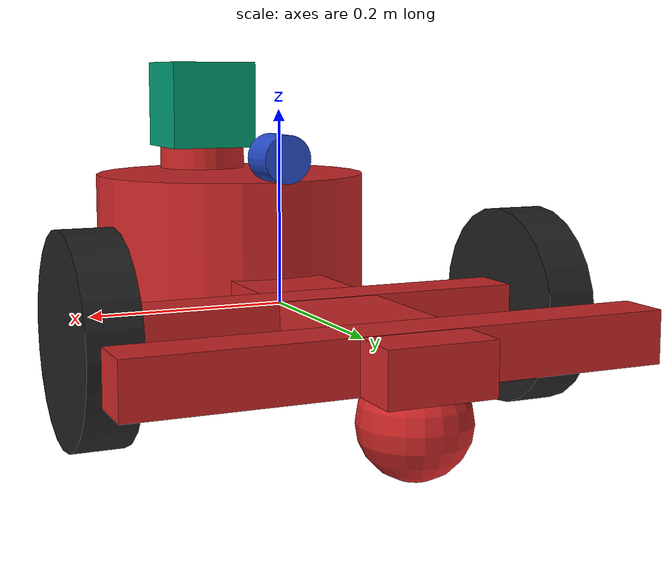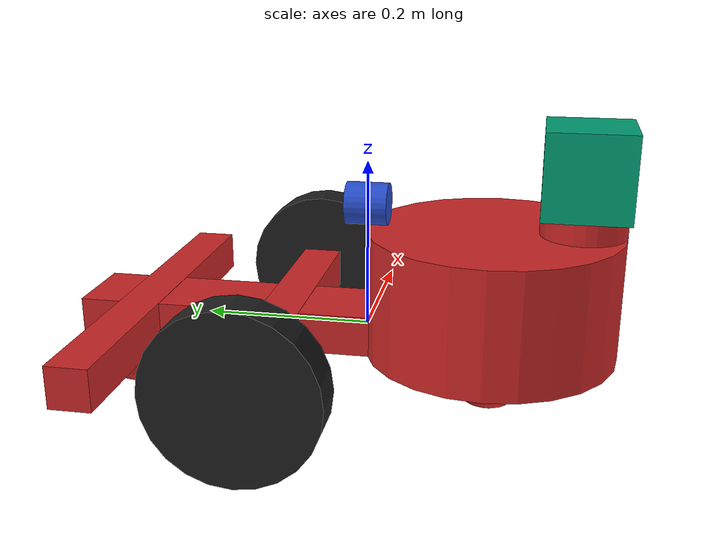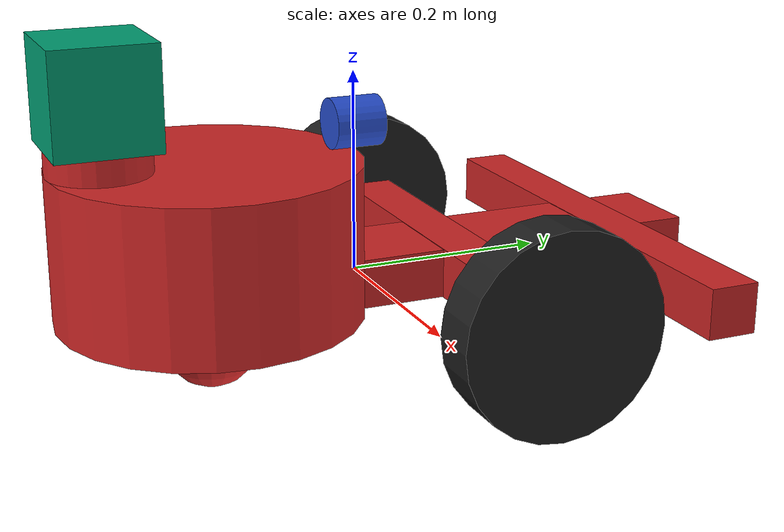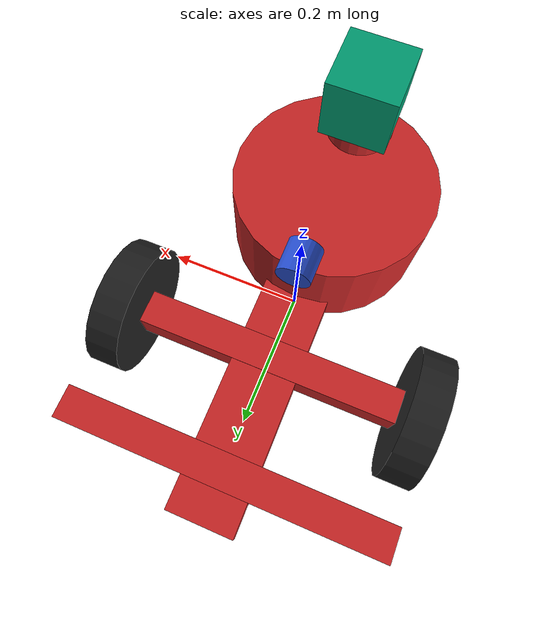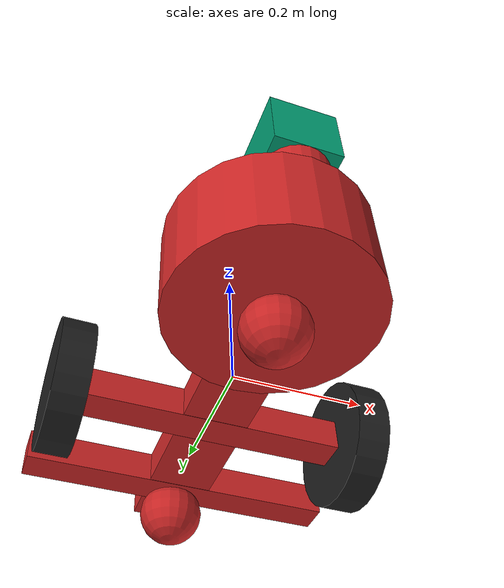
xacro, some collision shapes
<?xml version='1.0'?>

<robot name="my_robot" xmlns:xacro="http://www.ros.org/wiki/xacro">
    <xacro:include filename="$(find my_robot)/urdf/my_robot.gazebo" />

    <link name="robot_footprint"></link>

    <link name="crossbar_main">
        <inertial>
            <mass value="0.5"/>
            <origin xyz="0.0 0 0" rpy=" 0 0 0"/>
            <inertia
                ixx="1e-2" ixy="0" ixz="0"
                iyy="1e-2" iyz="0"
                izz="1e-2"
            />
        </inertial>

        <collision name='crossbar_main_collision'>
            <origin xyz="0 0 0" rpy=" 0 0 0"/>
            <geometry>
                <box size="0.1 0.5 0.05"/>
            </geometry>
        </collision>

        <visual name='crossbar_main_visual'>
            <origin xyz="0 0 0" rpy=" 0 0 0"/>
            <geometry>
                <box size="0.1 0.5 0.049"/>
            </geometry>
        </visual>

        <collision name='caster_collision'>
            <origin xyz="0 -0.25 -0.05" rpy=" 0 0 0"/>
            <geometry>
                <sphere radius="0.049"/>
            </geometry>
        </collision>

        <visual name='caster_visual'>
            <origin xyz="0 -0.25 -0.05" rpy=" 0 0 0"/>
            <geometry>
                <sphere radius="0.049"/>
            </geometry>
        </visual>

        <collision name='caster_collision_fw'>
            <origin xyz="0 0.24 -0.05" rpy=" 0 0 0"/>
            <geometry>
                <sphere radius="0.049"/>
            </geometry>
        </collision>

        <visual name='caster_visual_fw'>
            <origin xyz="0 0.20 -0.05" rpy=" 0 0 0"/>
            <geometry>
                <sphere radius="0.05"/>
            </geometry>
        </visual>

    </link>

    <joint name="ctc_joint" type="fixed">
        <origin xyz="0 0.1 0" rpy="0 0 0"/>
        <parent link="robot_footprint"/>
        <child link="crossbar_trans_center"/>
    </joint>

    <joint name="cm_joint" type="fixed">
        <origin xyz="0 0 0" rpy="0 0 0"/>
        <parent link="crossbar_trans_center"/>
        <child link="crossbar_main"/>
    </joint>

    <link name="crossbar_trans_forward">
        <inertial>
            <mass value="0.5"/>
            <origin xyz="0.0 0 0" rpy=" 0 0 0"/>
            <inertia
                ixx="1e-2" ixy="0" ixz="0"
                iyy="1e-2" iyz="0"
                izz="1e-2"
            />
        </inertial>

        <collision name='crossbar_trans_forward_collision'>
            <origin xyz="0 0 0" rpy=" 0 0 0"/>
            <geometry>
                <box size="0.5 0.05 0.05"/>
            </geometry>
        </collision>

        <visual name='crossbar_trans_forward_visual'>
            <origin xyz="0 0 0" rpy=" 0 0 0"/>
            <geometry>
                <box size="0.5 0.05 0.05"/>
            </geometry>
        </visual>
    </link>

    <joint name="ctf_joint" type="fixed">
        <origin xyz="0 0.275 0" rpy="0 0 0"/>
        <parent link="robot_footprint"/>
        <child link="crossbar_trans_forward"/>
    </joint>

    <link name="crossbar_trans_center">
        <inertial>
            <mass value="5"/>
            <origin xyz="0.0 0 0" rpy=" 0 0 0"/>
            <inertia
                ixx="1e-2" ixy="0" ixz="0"
                iyy="1e-2" iyz="0"
                izz="1e-2"
            />
        </inertial>
        <collision name='crossbar_trans_center_collision'>
            <origin xyz="0 0 0" rpy=" 0 0 0"/>
            <geometry>
                <box size="0.4 0.05 0.05"/>
            </geometry>
        </collision>

        <visual name='crossbar_trans_center_visual'>
            <origin xyz="0 0 0" rpy=" 0 0 0"/>
            <geometry>
                <box size="0.4 0.05 0.05"/>
            </geometry>
        </visual>
    </link>

    <link name="tail">
        <inertial>
            <mass value="0.25"/>
            <origin xyz="0.0 0 0" rpy=" 0 0 0"/>
            <inertia
                ixx="0.01" ixy="0" ixz="0"
                iyy="0.01" iyz="0"
                izz="0.01"
            />
        </inertial>
        <collision name='tail_collision'>
            <origin xyz="0 0 0" rpy=" 0 0 0"/>
            <geometry>
                <cylinder radius="0.15" length="0.15"/>
            </geometry>
        </collision>

        <visual name='tail_visual'>
            <origin xyz="0 0 0" rpy=" 0 0 0"/>
            <geometry>
                <cylinder radius="0.15" length="0.15"/>
            </geometry>
        </visual>
    </link>

    <joint name="tail_joint" type="fixed">
        <origin xyz="0 -0.25 0.05" rpy="0 0 0"/>
        <parent link="crossbar_main"/>
        <child link="tail"/>
    </joint>

    <link name="small_tail">
        <inertial>
            <mass value="0.001"/>
            <origin xyz="0.0 0 0" rpy=" 0 0 0"/>
            <inertia
                ixx="0.01" ixy="0" ixz="0"
                iyy="0.01" iyz="0"
                izz="0.01"
            />
        </inertial>
        <collision name='small_tail_collision'>
            <origin xyz="0 0 0" rpy=" 0 0 0"/>
            <geometry>
                <cylinder radius="0.05" length="0.05"/>
            </geometry>
        </collision>

        <visual name='small_tail_visual'>
            <origin xyz="0 0 0" rpy=" 0 0 0"/>
            <geometry>
                <cylinder radius="0.05" length="0.05"/>
            </geometry>
        </visual>
    </link>

    <joint type="fixed" name="small_tail_joint">
        <origin xyz="0 -0.1 0.1" rpy="0 0 1.5707"/>
        <axis xyz="0 1 0"/>
        <parent link="tail"/>
        <child link="small_tail"/>
    </joint>

    <link name="left_wheel">
        <collision>
            <geometry>
                <cylinder radius="0.1" length="0.05"/>
            </geometry>
            <origin xyz="0 0 0" rpy="0 1.5707 0"/>
        </collision>

        <inertial>
            <origin xyz="0 0 0" rpy="0 1.5707 0"/>
            <mass value="0.5"/>
            <inertia ixx="0.1" ixy="0" ixz="0"  iyy="0.1" iyz="0" izz="0.1"/>
        </inertial>

        <visual>
            <geometry>
                <cylinder radius="0.1" length="0.05"/>
            </geometry>
            <origin xyz="0 0 0" rpy="0 1.5707 0"/>
        </visual>
    </link>

    <joint type="continuous" name="left_wheel_hinge">
        <origin xyz="-0.225 0 0" rpy="0 0 0"/>
        <child link="left_wheel"/>
        <parent link="crossbar_trans_center"/>
        <axis xyz="-1 0 0" rpy="0 0 0"/>
        <limit effort="10000" velocity="1000"/>
        <dynamics damping="1.0" friction="1.0"/>
    </joint>

    <link name="right_wheel">
        <collision>
            <geometry>
                <cylinder radius="0.1" length="0.05"/>
            </geometry>
            <origin xyz="0 0 0" rpy="0 1.5707 0"/>
        </collision>

        <inertial>
            <origin xyz="0 0 0" rpy="0 1.5707 0"/>
            <mass value="0.5"/>
            <inertia ixx="0.1" ixy="0" ixz="0"  iyy="0.1" iyz="0" izz="0.1"/>
        </inertial>

        <visual>
            <geometry>
                <cylinder radius="0.1" length="0.05"/>
            </geometry>
            <origin xyz="0 0 0" rpy="0 1.5707 0"/>
        </visual>
    </link>

    <joint type="continuous" name="right_wheel_hinge">
        <origin xyz="0.225 0 0" rpy="0 0 0"/>
        <child link="right_wheel"/>
        <parent link="crossbar_trans_center"/>
        <axis xyz="-1 0 0" rpy="0 0 0"/>
        <limit effort="10000" velocity="1000"/>
        <dynamics damping="1.0" friction="1.0"/>
    </joint>

    <link name="camera">
        <inertial>
            <mass value="0.1"/>
            <origin xyz="0 0 0" rpy="0 0 0"/>
            <box_inertia sizeX="0.05" sizeY="0.05" sizeZ="0.05" mass="0.1"/>
            <inertia ixx="1e-6" ixy="0" ixz="0" iyy="1e-6" iyz="0" izz="1e-6"/>
        </inertial>
        <collision>
            <origin xyz="0 0 0" rpy="0 1.5707 0"/>
            <geometry>
                <cylinder radius="0.025" length="0.05"/>
            </geometry>
        </collision>
        <visual>
            <origin xyz="0 0 0" rpy="0 1.5707 0"/>
            <geometry>
                <cylinder radius="0.025" length="0.05"/>
            </geometry>
        </visual>
    </link>

    <joint type="fixed" name="camera_joint">
        <origin xyz="0 0.15 0.1" rpy="0 0 1.5707"/>
        <axis xyz="0 1 0"/>
        <parent link="tail"/>
        <child link="camera"/>
    </joint>

    <link name="camera_link_optical">
    </link>

    <joint name="camera_optical_joint" type="fixed">
        <origin xyz="0 0 0" rpy="1.5707 3.1416 0"/>
        <parent link="camera"/>
        <child link="camera_link_optical"/>
    </joint>

    <link name="hokuyo">
        <inertial>
        <mass value="1e-1"/>
            <origin xyz="0 0 0" rpy="0 0 0"/>
            <box_inertia sizeX="0.05" sizeY="0.05" sizeZ="0.05" mass="0.1"/>
            <inertia ixx="1e-6" ixy="0" ixz="0" iyy="1e-6" iyz="0" izz="1e-6"/>
            </inertial>
        <collision>
        <origin xyz="0 0 0" rpy="0 0 0"/>
        <geometry>
            <box size="0.1 0.1 0.1"/>
        </geometry>
        </collision>
        <visual>
        <origin xyz="0 0 0" rpy="0 0 0"/>
        <geometry>
            <mesh filename="package://my_robot/meshes/hokuyo.dae"/>
        </geometry>
        </visual>
    </link>

    <joint type="fixed" name="hokuyo_joint">
        <origin xyz="0 0 0.05" rpy="0 0 0"/>
        <axis xyz="0 1 0"/>
        <parent link="small_tail"/>
        <child link="hokuyo"/>
    </joint>

    <gazebo reference="crossbar_main">
        <material>Gazebo/Red</material>
    </gazebo>

    <gazebo reference="crossbar_trans_forward">
        <material>Gazebo/Red</material>
    </gazebo>

    <gazebo reference="crossbar_trans_center">
        <material>Gazebo/Red</material>
    </gazebo>

    <gazebo reference="tail">
        <material>Gazebo/Red</material>
    </gazebo>

    <gazebo reference="small_tail">
        <material>Gazebo/Red</material>
    </gazebo>

    <gazebo reference="left_wheel">
        <material>Gazebo/Black</material>
    </gazebo>

    <gazebo reference="right_wheel">
        <material>Gazebo/Black</material>
    </gazebo>

    <gazebo reference="camera">
        <material>Gazebo/Blue</material>
    </gazebo>

</robot>
